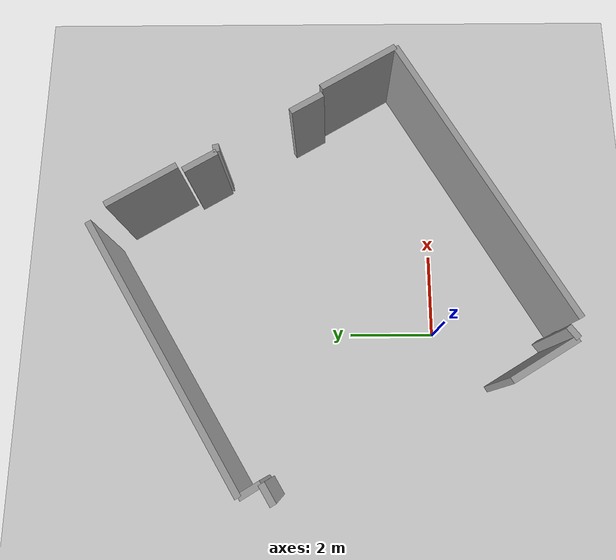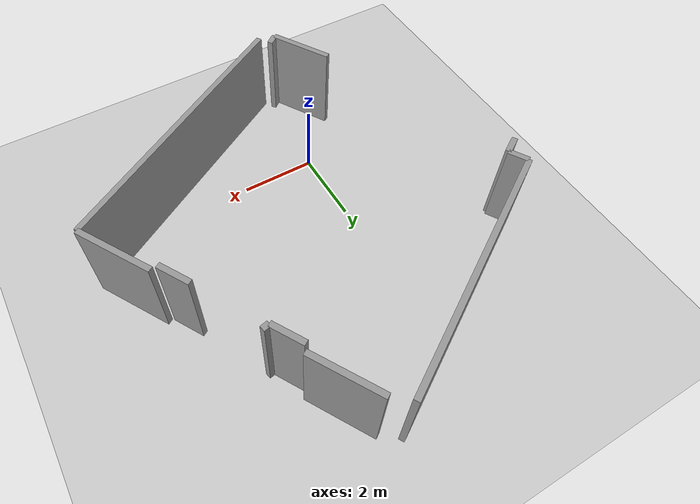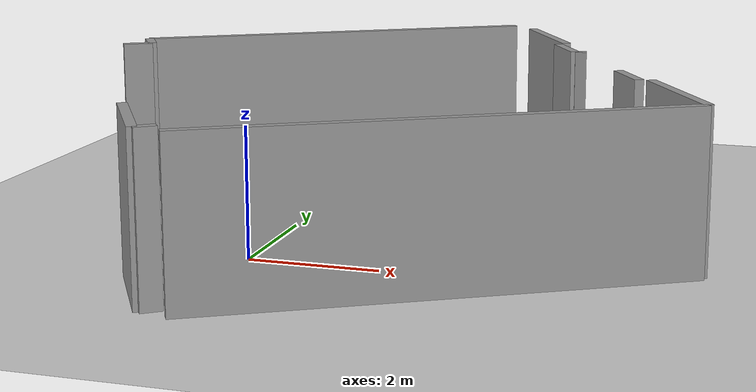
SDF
<?xml version='1.0'?>
<sdf version='1.7'>
  <world name='default'>
    <light name='sun' type='directional'>
      <cast_shadows>1</cast_shadows>
      <pose>0 0 10 0 -0 0</pose>
      <diffuse>0.8 0.8 0.8 1</diffuse>
      <specular>0.2 0.2 0.2 1</specular>
      <attenuation>
        <range>1000</range>
        <constant>0.9</constant>
        <linear>0.01</linear>
        <quadratic>0.001</quadratic>
      </attenuation>
      <direction>-0.5 0.1 -0.9</direction>
      <spot>
        <inner_angle>0</inner_angle>
        <outer_angle>0</outer_angle>
        <falloff>0</falloff>
      </spot>
    </light>
    <model name='ground_plane'>
      <static>1</static>
      <link name='link'>
        <collision name='collision'>
          <geometry>
            <plane>
              <normal>0 0 1</normal>
              <size>100 100</size>
            </plane>
          </geometry>
          <surface>
            <friction>
              <ode>
                <mu>100</mu>
                <mu2>50</mu2>
              </ode>
              <torsional>
                <ode/>
              </torsional>
            </friction>
            <contact>
              <ode/>
            </contact>
            <bounce/>
          </surface>
          <max_contacts>10</max_contacts>
        </collision>
        <visual name='visual'>
          <cast_shadows>0</cast_shadows>
          <geometry>
            <plane>
              <normal>0 0 1</normal>
              <size>100 100</size>
            </plane>
          </geometry>
          <material>
            <script>
              <uri>file://media/materials/scripts/gazebo.material</uri>
              <name>Gazebo/Grey</name>
            </script>
          </material>
        </visual>
        <self_collide>0</self_collide>
        <enable_wind>0</enable_wind>
        <kinematic>0</kinematic>
      </link>
    </model>
    <gravity>0 0 -9.8</gravity>
    <magnetic_field>6e-06 2.3e-05 -4.2e-05</magnetic_field>
    <atmosphere type='adiabatic'/>
    <physics type='ode'>
      <max_step_size>0.001</max_step_size>
      <real_time_factor>1</real_time_factor>
      <real_time_update_rate>1000</real_time_update_rate>
    </physics>
    <scene>
      <ambient>0.4 0.4 0.4 1</ambient>
      <background>0.7 0.7 0.7 1</background>
      <shadows>1</shadows>
    </scene>
    <audio>
      <device>default</device>
    </audio>
    <wind/>
    <spherical_coordinates>
      <surface_model>EARTH_WGS84</surface_model>
      <latitude_deg>0</latitude_deg>
      <longitude_deg>0</longitude_deg>
      <elevation>0</elevation>
      <heading_deg>0</heading_deg>
    </spherical_coordinates>
    <model name='simple_world_test'>
      <pose>0 0 0 0 -0 0</pose>
      <link name='Wall_0'>
        <collision name='Wall_0_Collision'>
          <geometry>
            <box>
              <size>1.708156901458411 0.15 2.5</size>
            </box>
          </geometry>
          <pose>0 0 1.25 0 -0 0</pose>
          <max_contacts>10</max_contacts>
          <surface>
            <contact>
              <ode/>
            </contact>
            <bounce/>
            <friction>
              <torsional>
                <ode/>
              </torsional>
              <ode/>
            </friction>
          </surface>
        </collision>
        <visual name='Wall_0_Visual'>
          <pose>0 0 1.25 0 -0 0</pose>
          <geometry>
            <box>
              <size>1.708156901458411 0.15 2.5</size>
            </box>
          </geometry>
          <material>
            <script>
              <uri>file://media/materials/scripts/gazebo.material</uri>
              <name>Gazebo/Grey</name>
            </script>
            <ambient>1 1 1 1</ambient>
          </material>
          <meta>
            <layer>0</layer>
          </meta>
        </visual>
        <pose>-0.895 -1.9849999999999999 0 0 -0 2.1051918035493102</pose>
        <self_collide>0</self_collide>
        <enable_wind>0</enable_wind>
        <kinematic>0</kinematic>
      </link>
      <link name='Wall_1'>
        <collision name='Wall_1_Collision'>
          <geometry>
            <box>
              <size>0.49072994610070386 0.15 2.5</size>
            </box>
          </geometry>
          <pose>0 0 1.25 0 -0 0</pose>
          <max_contacts>10</max_contacts>
          <surface>
            <contact>
              <ode/>
            </contact>
            <bounce/>
            <friction>
              <torsional>
                <ode/>
              </torsional>
              <ode/>
            </friction>
          </surface>
        </collision>
        <visual name='Wall_1_Visual'>
          <pose>0 0 1.25 0 -0 0</pose>
          <geometry>
            <box>
              <size>0.49072994610070386 0.15 2.5</size>
            </box>
          </geometry>
          <material>
            <script>
              <uri>file://media/materials/scripts/gazebo.material</uri>
              <name>Gazebo/Grey</name>
            </script>
            <ambient>1 1 1 1</ambient>
          </material>
          <meta>
            <layer>0</layer>
          </meta>
        </visual>
        <pose>-3.5431 3.7944 0 0 -0 0.5364354576047313</pose>
        <self_collide>0</self_collide>
        <enable_wind>0</enable_wind>
        <kinematic>0</kinematic>
      </link>
      <link name='Wall_2'>
        <collision name='Wall_2_Collision'>
          <geometry>
            <box>
              <size>0.5294717839507592 0.15 2.5</size>
            </box>
          </geometry>
          <pose>0 0 1.25 0 -0 0</pose>
          <max_contacts>10</max_contacts>
          <surface>
            <contact>
              <ode/>
            </contact>
            <bounce/>
            <friction>
              <torsional>
                <ode/>
              </torsional>
              <ode/>
            </friction>
          </surface>
        </collision>
        <visual name='Wall_2_Visual'>
          <pose>0 0 1.25 0 -0 0</pose>
          <geometry>
            <box>
              <size>0.5294717839507592 0.15 2.5</size>
            </box>
          </geometry>
          <material>
            <script>
              <uri>file://media/materials/scripts/gazebo.material</uri>
              <name>Gazebo/Grey</name>
            </script>
            <ambient>1 1 1 1</ambient>
          </material>
          <meta>
            <layer>0</layer>
          </meta>
        </visual>
        <pose>-3.4675000000000002 4.147349999999999 0 0 -0 2.1072317843996284</pose>
        <self_collide>0</self_collide>
        <enable_wind>0</enable_wind>
        <kinematic>0</kinematic>
      </link>
      <link name='Wall_3'>
        <collision name='Wall_3_Collision'>
          <geometry>
            <box>
              <size>6.7539992189813 0.15 2.5</size>
            </box>
          </geometry>
          <pose>0 0 1.25 0 -0 0</pose>
          <max_contacts>10</max_contacts>
          <surface>
            <contact>
              <ode/>
            </contact>
            <bounce/>
            <friction>
              <torsional>
                <ode/>
              </torsional>
              <ode/>
            </friction>
          </surface>
        </collision>
        <visual name='Wall_3_Visual'>
          <pose>0 0 1.25 0 -0 0</pose>
          <geometry>
            <box>
              <size>6.7539992189813 0.15 2.5</size>
            </box>
          </geometry>
          <material>
            <script>
              <uri>file://media/materials/scripts/gazebo.material</uri>
              <name>Gazebo/Grey</name>
            </script>
            <ambient>1 1 1 1</ambient>
          </material>
          <meta>
            <layer>0</layer>
          </meta>
        </visual>
        <pose>-0.7023500000000003 6.1045 0 0 -0 0.5377101541737341</pose>
        <self_collide>0</self_collide>
        <enable_wind>0</enable_wind>
        <kinematic>0</kinematic>
      </link>
      <link name='Wall_4'>
        <collision name='Wall_4_Collision'>
          <geometry>
            <box>
              <size>1.812257132776693 0.15 2.5</size>
            </box>
          </geometry>
          <pose>0 0 1.25 0 -0 0</pose>
          <max_contacts>10</max_contacts>
          <surface>
            <contact>
              <ode/>
            </contact>
            <bounce/>
            <friction>
              <torsional>
                <ode/>
              </torsional>
              <ode/>
            </friction>
          </surface>
        </collision>
        <visual name='Wall_4_Visual'>
          <pose>0 0 1.25 0 -0 0</pose>
          <geometry>
            <box>
              <size>1.812257132776693 0.15 2.5</size>
            </box>
          </geometry>
          <material>
            <script>
              <uri>file://media/materials/scripts/gazebo.material</uri>
              <name>Gazebo/Grey</name>
            </script>
            <ambient>1 1 1 1</ambient>
          </material>
          <meta>
            <layer>0</layer>
          </meta>
        </visual>
        <pose>3.0561249999999998 6.72165 0 0 -0 -1.0345983988769096</pose>
        <self_collide>0</self_collide>
        <enable_wind>0</enable_wind>
        <kinematic>0</kinematic>
      </link>
      <link name='Wall_5'>
        <collision name='Wall_5_Collision'>
          <geometry>
            <box>
              <size>0.8609404915556008 0.15 2.5</size>
            </box>
          </geometry>
          <pose>0 0 1.25 0 -0 0</pose>
          <max_contacts>10</max_contacts>
          <surface>
            <contact>
              <ode/>
            </contact>
            <bounce/>
            <friction>
              <torsional>
                <ode/>
              </torsional>
              <ode/>
            </friction>
          </surface>
        </collision>
        <visual name='Wall_5_Visual'>
          <pose>0 0 1.25 0 -0 0</pose>
          <geometry>
            <box>
              <size>0.8609404915556008 0.15 2.5</size>
            </box>
          </geometry>
          <material>
            <script>
              <uri>file://media/materials/scripts/gazebo.material</uri>
              <name>Gazebo/Grey</name>
            </script>
            <ambient>1 1 1 1</ambient>
          </material>
          <meta>
            <layer>0</layer>
          </meta>
        </visual>
        <pose>3.61739 5.42774 0 0 -0 -1.0393608275241233</pose>
        <self_collide>0</self_collide>
        <enable_wind>0</enable_wind>
        <kinematic>0</kinematic>
      </link>
      <link name='Wall_6'>
        <collision name='Wall_6_Collision'>
          <geometry>
            <box>
              <size>0.18720273101640394 0.15 2.5</size>
            </box>
          </geometry>
          <pose>0 0 1.25 0 -0 0</pose>
          <max_contacts>10</max_contacts>
          <surface>
            <contact>
              <ode/>
            </contact>
            <bounce/>
            <friction>
              <torsional>
                <ode/>
              </torsional>
              <ode/>
            </friction>
          </surface>
        </collision>
        <visual name='Wall_6_Visual'>
          <pose>0 0 1.25 0 -0 0</pose>
          <geometry>
            <box>
              <size>0.18720273101640394 0.15 2.5</size>
            </box>
          </geometry>
          <material>
            <script>
              <uri>file://media/materials/scripts/gazebo.material</uri>
              <name>Gazebo/Grey</name>
            </script>
            <ambient>1 1 1 1</ambient>
          </material>
          <meta>
            <layer>0</layer>
          </meta>
        </visual>
        <pose>3.92734 5.074915 0 0 -0 0.196505088135111</pose>
        <self_collide>0</self_collide>
        <enable_wind>0</enable_wind>
        <kinematic>0</kinematic>
      </link>
      <link name='Wall_7'>
        <collision name='Wall_7_Collision'>
          <geometry>
            <box>
              <size>0.8609404915556012 0.15 2.5</size>
            </box>
          </geometry>
          <pose>0 0 1.25 0 -0 0</pose>
          <max_contacts>10</max_contacts>
          <surface>
            <contact>
              <ode/>
            </contact>
            <bounce/>
            <friction>
              <torsional>
                <ode/>
              </torsional>
              <ode/>
            </friction>
          </surface>
        </collision>
        <visual name='Wall_7_Visual'>
          <pose>0 0 1.25 0 -0 0</pose>
          <geometry>
            <box>
              <size>0.8609404915556012 0.15 2.5</size>
            </box>
          </geometry>
          <material>
            <script>
              <uri>file://media/materials/scripts/gazebo.material</uri>
              <name>Gazebo/Grey</name>
            </script>
            <ambient>1 1 1 1</ambient>
          </material>
          <meta>
            <layer>0</layer>
          </meta>
        </visual>
        <pose>5.04519 3.02644 0 0 -0 -1.0393608275241235</pose>
        <self_collide>0</self_collide>
        <enable_wind>0</enable_wind>
        <kinematic>0</kinematic>
      </link>
      <link name='Wall_8'>
        <collision name='Wall_8_Collision'>
          <geometry>
            <box>
              <size>2.04901727908771 0.15 2.5</size>
            </box>
          </geometry>
          <pose>0 0 1.25 0 -0 0</pose>
          <max_contacts>10</max_contacts>
          <surface>
            <contact>
              <ode/>
            </contact>
            <bounce/>
            <friction>
              <torsional>
                <ode/>
              </torsional>
              <ode/>
            </friction>
          </surface>
        </collision>
        <visual name='Wall_8_Visual'>
          <pose>0 0 1.25 0 -0 0</pose>
          <geometry>
            <box>
              <size>2.04901727908771 0.15 2.5</size>
            </box>
          </geometry>
          <material>
            <script>
              <uri>file://media/materials/scripts/gazebo.material</uri>
              <name>Gazebo/Grey</name>
            </script>
            <ambient>1 1 1 1</ambient>
          </material>
          <meta>
            <layer>0</layer>
          </meta>
        </visual>
        <pose>5.95821 1.8109700000000002 0 0 -0 -1.03226003194473</pose>
        <self_collide>0</self_collide>
        <enable_wind>0</enable_wind>
        <kinematic>0</kinematic>
      </link>
      <link name='Wall_9'>
        <collision name='Wall_9_Collision'>
          <geometry>
            <box>
              <size>7.512208847602681 0.15 2.5</size>
            </box>
          </geometry>
          <pose>0 0 1.25 0 -0 0</pose>
          <max_contacts>10</max_contacts>
          <surface>
            <contact>
              <ode/>
            </contact>
            <bounce/>
            <friction>
              <torsional>
                <ode/>
              </torsional>
              <ode/>
            </friction>
          </surface>
        </collision>
        <visual name='Wall_9_Visual'>
          <pose>0 0 1.25 0 -0 0</pose>
          <geometry>
            <box>
              <size>7.512208847602681 0.15 2.5</size>
            </box>
          </geometry>
          <material>
            <script>
              <uri>file://media/materials/scripts/gazebo.material</uri>
              <name>Gazebo/Grey</name>
            </script>
            <ambient>1 1 1 1</ambient>
          </material>
          <meta>
            <layer>0</layer>
          </meta>
        </visual>
        <pose>3.2312100000000004 -0.94733 0 0 -0 -2.6177639779300534</pose>
        <self_collide>0</self_collide>
        <enable_wind>0</enable_wind>
        <kinematic>0</kinematic>
      </link>
      <link name='Wall_10'>
        <collision name='Wall_10_Collision'>
          <geometry>
            <box>
              <size>0.32506205945942074 0.15 2.5</size>
            </box>
          </geometry>
          <pose>0 0 1.25 0 -0 0</pose>
          <max_contacts>10</max_contacts>
          <surface>
            <contact>
              <ode/>
            </contact>
            <bounce/>
            <friction>
              <torsional>
                <ode/>
              </torsional>
              <ode/>
            </friction>
          </surface>
        </collision>
        <visual name='Wall_10_Visual'>
          <pose>0 0 1.25 0 -0 0</pose>
          <geometry>
            <box>
              <size>0.32506205945942074 0.15 2.5</size>
            </box>
          </geometry>
          <material>
            <script>
              <uri>file://media/materials/scripts/gazebo.material</uri>
              <name>Gazebo/Grey</name>
            </script>
            <ambient>1 1 1 1</ambient>
          </material>
          <meta>
            <layer>0</layer>
          </meta>
        </visual>
        <pose>-0.33082 -2.621365 0 0 -0 -2.4894776984717417</pose>
        <self_collide>0</self_collide>
        <enable_wind>0</enable_wind>
        <kinematic>0</kinematic>
      </link>
      <static>1</static>
    </model>
  </world>
</sdf>
